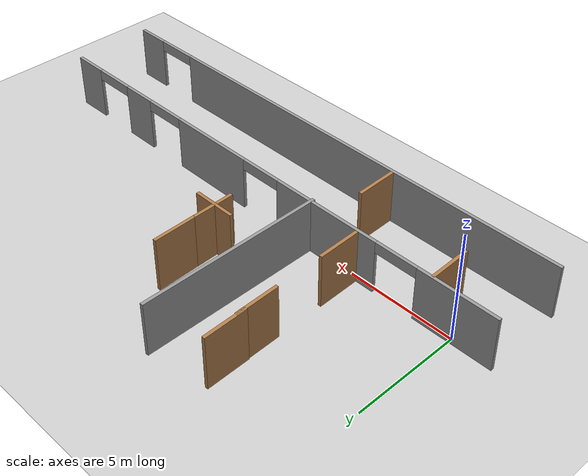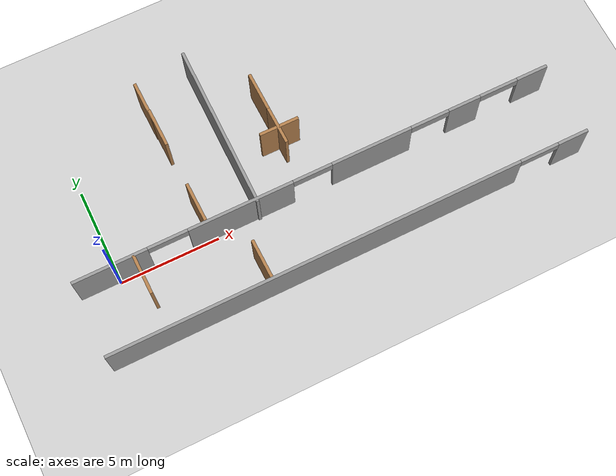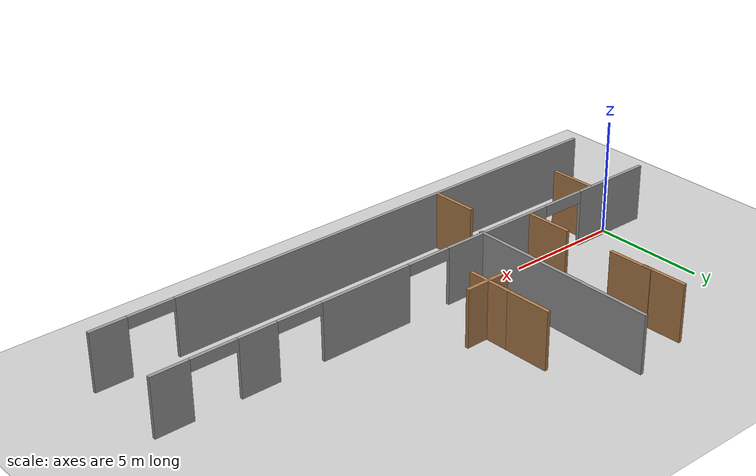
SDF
<sdf version="1.6">
 <world name="default">
  <model name="ground_plane">
   <static>1</static>
   <link name="link">
    <collision name="collision">
     <geometry><plane><normal>0 0 1</normal><size>100 100</size></plane></geometry>
     <surface><friction><ode><mu>100</mu><mu2>50</mu2></ode></friction></surface>
    </collision>
    <visual name="visual">
     <cast_shadows>0</cast_shadows>
     <geometry><plane><normal>0 0 1</normal><size>100 100</size></plane></geometry>
     <material>
      <script><uri>file://media/materials/scripts/gazebo.material</uri><name>Gazebo/Grey</name></script>
     </material>
    </visual>
   </link>
  </model>
  <model name="rbcp_final4">
   <link name="Wall_57">
    <pose>5.40302 0.050249 2.5 0 -0 0</pose>
    <visual name="Wall_57_Visual_0">
     <pose>-1.79121 0 1.25 0 -0 0</pose>
     <geometry><box><size>20.9176 0.15 2.5</size></box></geometry>
     <material>
      <script><uri>file://media/materials/scripts/gazebo.material</uri><name>Gazebo/Grey</name></script>
      <ambient>1 1 1 1</ambient>
      <diffuse>0.7 0.7 0.7 1</diffuse>
      <specular>0.01 0.01 0.01 1</specular>
      <emissive>0 0 0 1</emissive>
     </material>
    </visual>
    <visual name="Wall_57_Visual_1">
     <pose>11.4588 0 1.25 0 -0 0</pose>
     <geometry><box><size>1.58243 0.15 2.5</size></box></geometry>
     <material>
      <script><uri>file://media/materials/scripts/gazebo.material</uri><name>Gazebo/Grey</name></script>
      <ambient>1 1 1 1</ambient>
      <diffuse>0.7 0.7 0.7 1</diffuse>
      <specular>0.01 0.01 0.01 1</specular>
      <emissive>0 0 0 1</emissive>
     </material>
    </visual>
    <visual name="Wall_57_Visual_2">
     <pose>9.66757 0 2.25 0 -0 0</pose>
     <geometry><box><size>2 0.15 0.5</size></box></geometry>
     <material>
      <script><uri>file://media/materials/scripts/gazebo.material</uri><name>Gazebo/Grey</name></script>
      <ambient>1 1 1 1</ambient>
      <diffuse>0.7 0.7 0.7 1</diffuse>
      <specular>0.01 0.01 0.01 1</specular>
      <emissive>0 0 0 1</emissive>
     </material>
    </visual>
    <collision name="Wall_57_Collision_0">
     <pose>-1.79121 0 1.25 0 -0 0</pose>
     <geometry><box><size>20.9176 0.15 2.5</size></box></geometry>
     <surface>
      <friction>
       <ode><mu>1</mu><mu2>1</mu2><fdir1>0 0 0</fdir1><slip1>0</slip1><slip2>0</slip2></ode>
       <torsional>
        <coefficient>1</coefficient>
        <patch_radius>0</patch_radius>
        <surface_radius>0</surface_radius>
        <use_patch_radius>1</use_patch_radius>
        <ode><slip>0</slip></ode>
       </torsional>
      </friction>
      <bounce><restitution_coefficient>0</restitution_coefficient><threshold>1e+06</threshold></bounce>
      <contact>
       <collide_without_contact>0</collide_without_contact>
       <collide_without_contact_bitmask>1</collide_without_contact_bitmask>
       <collide_bitmask>1</collide_bitmask>
       <ode>
        <soft_cfm>0</soft_cfm>
        <soft_erp>0.2</soft_erp>
        <kp>1e+13</kp>
        <kd>1</kd>
        <max_vel>0.01</max_vel>
        <min_depth>0</min_depth>
       </ode>
       <bullet>
        <split_impulse>1</split_impulse>
        <split_impulse_penetration_threshold>-0.01</split_impulse_penetration_threshold>
        <soft_cfm>0</soft_cfm>
        <soft_erp>0.2</soft_erp>
        <kp>1e+13</kp>
        <kd>1</kd>
       </bullet>
      </contact>
     </surface>
    </collision>
    <collision name="Wall_57_Collision_1">
     <pose>11.4588 0 1.25 0 -0 0</pose>
     <geometry><box><size>1.58243 0.15 2.5</size></box></geometry>
     <surface>
      <friction>
       <ode><mu>1</mu><mu2>1</mu2><fdir1>0 0 0</fdir1><slip1>0</slip1><slip2>0</slip2></ode>
       <torsional>
        <coefficient>1</coefficient>
        <patch_radius>0</patch_radius>
        <surface_radius>0</surface_radius>
        <use_patch_radius>1</use_patch_radius>
        <ode><slip>0</slip></ode>
       </torsional>
      </friction>
      <bounce><restitution_coefficient>0</restitution_coefficient><threshold>1e+06</threshold></bounce>
      <contact>
       <collide_without_contact>0</collide_without_contact>
       <collide_without_contact_bitmask>1</collide_without_contact_bitmask>
       <collide_bitmask>1</collide_bitmask>
       <ode>
        <soft_cfm>0</soft_cfm>
        <soft_erp>0.2</soft_erp>
        <kp>1e+13</kp>
        <kd>1</kd>
        <max_vel>0.01</max_vel>
        <min_depth>0</min_depth>
       </ode>
       <bullet>
        <split_impulse>1</split_impulse>
        <split_impulse_penetration_threshold>-0.01</split_impulse_penetration_threshold>
        <soft_cfm>0</soft_cfm>
        <soft_erp>0.2</soft_erp>
        <kp>1e+13</kp>
        <kd>1</kd>
       </bullet>
      </contact>
     </surface>
    </collision>
    <collision name="Wall_57_Collision_2">
     <pose>9.66757 0 2.25 0 -0 0</pose>
     <geometry><box><size>2 0.15 0.5</size></box></geometry>
     <surface>
      <friction>
       <ode><mu>1</mu><mu2>1</mu2><fdir1>0 0 0</fdir1><slip1>0</slip1><slip2>0</slip2></ode>
       <torsional>
        <coefficient>1</coefficient>
        <patch_radius>0</patch_radius>
        <surface_radius>0</surface_radius>
        <use_patch_radius>1</use_patch_radius>
        <ode><slip>0</slip></ode>
       </torsional>
      </friction>
      <bounce><restitution_coefficient>0</restitution_coefficient><threshold>1e+06</threshold></bounce>
      <contact>
       <collide_without_contact>0</collide_without_contact>
       <collide_without_contact_bitmask>1</collide_without_contact_bitmask>
       <collide_bitmask>1</collide_bitmask>
       <ode>
        <soft_cfm>0</soft_cfm>
        <soft_erp>0.2</soft_erp>
        <kp>1e+13</kp>
        <kd>1</kd>
        <max_vel>0.01</max_vel>
        <min_depth>0</min_depth>
       </ode>
       <bullet>
        <split_impulse>1</split_impulse>
        <split_impulse_penetration_threshold>-0.01</split_impulse_penetration_threshold>
        <soft_cfm>0</soft_cfm>
        <soft_erp>0.2</soft_erp>
        <kp>1e+13</kp>
        <kd>1</kd>
       </bullet>
      </contact>
     </surface>
    </collision>
   </link>
   <link name="Wall_61">
    <pose>5.36104 3.82251 2.5 0 -0 0</pose>
    <visual name="Wall_61_Visual_0">
     <pose>-10.3954 0 1.25 0 -0 0</pose>
     <geometry><box><size>3.7092 0.15 2.5</size></box></geometry>
     <material>
      <script><uri>file://media/materials/scripts/gazebo.material</uri><name>Gazebo/Grey</name></script>
      <ambient>1 1 1 1</ambient>
      <diffuse>0.7 0.7 0.7 1</diffuse>
      <specular>0.01 0.01 0.01 1</specular>
      <emissive>0 0 0 1</emissive>
     </material>
    </visual>
    <visual name="Wall_61_Visual_1">
     <pose>-3.88236 0 1.25 0 -0 0</pose>
     <geometry><box><size>5.31687 0.15 2.5</size></box></geometry>
     <material>
      <script><uri>file://media/materials/scripts/gazebo.material</uri><name>Gazebo/Grey</name></script>
      <ambient>1 1 1 1</ambient>
      <diffuse>0.7 0.7 0.7 1</diffuse>
      <specular>0.01 0.01 0.01 1</specular>
      <emissive>0 0 0 1</emissive>
     </material>
    </visual>
    <visual name="Wall_61_Visual_2">
     <pose>2.85504 0 1.25 0 -0 0</pose>
     <geometry><box><size>4.15793 0.15 2.5</size></box></geometry>
     <material>
      <script><uri>file://media/materials/scripts/gazebo.material</uri><name>Gazebo/Grey</name></script>
      <ambient>1 1 1 1</ambient>
      <diffuse>0.7 0.7 0.7 1</diffuse>
      <specular>0.01 0.01 0.01 1</specular>
      <emissive>0 0 0 1</emissive>
     </material>
    </visual>
    <visual name="Wall_61_Visual_3">
     <pose>7.77928 0 1.25 0 -0 0</pose>
     <geometry><box><size>1.69055 0.15 2.5</size></box></geometry>
     <material>
      <script><uri>file://media/materials/scripts/gazebo.material</uri><name>Gazebo/Grey</name></script>
      <ambient>1 1 1 1</ambient>
      <diffuse>0.7 0.7 0.7 1</diffuse>
      <specular>0.01 0.01 0.01 1</specular>
      <emissive>0 0 0 1</emissive>
     </material>
    </visual>
    <visual name="Wall_61_Visual_4">
     <pose>11.4373 0 1.25 0 -0 0</pose>
     <geometry><box><size>1.62544 0.15 2.5</size></box></geometry>
     <material>
      <script><uri>file://media/materials/scripts/gazebo.material</uri><name>Gazebo/Grey</name></script>
      <ambient>1 1 1 1</ambient>
      <diffuse>0.7 0.7 0.7 1</diffuse>
      <specular>0.01 0.01 0.01 1</specular>
      <emissive>0 0 0 1</emissive>
     </material>
    </visual>
    <visual name="Wall_61_Visual_5">
     <pose>-7.5408 0 2.25 0 -0 0</pose>
     <geometry><box><size>2 0.15 0.5</size></box></geometry>
     <material>
      <script><uri>file://media/materials/scripts/gazebo.material</uri><name>Gazebo/Grey</name></script>
      <ambient>1 1 1 1</ambient>
      <diffuse>0.7 0.7 0.7 1</diffuse>
      <specular>0.01 0.01 0.01 1</specular>
      <emissive>0 0 0 1</emissive>
     </material>
    </visual>
    <visual name="Wall_61_Visual_6">
     <pose>-0.223926 0 2.25 0 -0 0</pose>
     <geometry><box><size>2 0.15 0.5</size></box></geometry>
     <material>
      <script><uri>file://media/materials/scripts/gazebo.material</uri><name>Gazebo/Grey</name></script>
      <ambient>1 1 1 1</ambient>
      <diffuse>0.7 0.7 0.7 1</diffuse>
      <specular>0.01 0.01 0.01 1</specular>
      <emissive>0 0 0 1</emissive>
     </material>
    </visual>
    <visual name="Wall_61_Visual_7">
     <pose>5.934 0 2.25 0 -0 0</pose>
     <geometry><box><size>2 0.15 0.5</size></box></geometry>
     <material>
      <script><uri>file://media/materials/scripts/gazebo.material</uri><name>Gazebo/Grey</name></script>
      <ambient>1 1 1 1</ambient>
      <diffuse>0.7 0.7 0.7 1</diffuse>
      <specular>0.01 0.01 0.01 1</specular>
      <emissive>0 0 0 1</emissive>
     </material>
    </visual>
    <visual name="Wall_61_Visual_8">
     <pose>9.62456 0 2.25 0 -0 0</pose>
     <geometry><box><size>2 0.15 0.5</size></box></geometry>
     <material>
      <script><uri>file://media/materials/scripts/gazebo.material</uri><name>Gazebo/Grey</name></script>
      <ambient>1 1 1 1</ambient>
      <diffuse>0.7 0.7 0.7 1</diffuse>
      <specular>0.01 0.01 0.01 1</specular>
      <emissive>0 0 0 1</emissive>
     </material>
    </visual>
    <collision name="Wall_61_Collision_3">
     <pose>7.77928 0 1.25 0 -0 0</pose>
     <geometry><box><size>1.69055 0.15 2.5</size></box></geometry>
     <surface>
      <friction>
       <ode><mu>1</mu><mu2>1</mu2><fdir1>0 0 0</fdir1><slip1>0</slip1><slip2>0</slip2></ode>
       <torsional>
        <coefficient>1</coefficient>
        <patch_radius>0</patch_radius>
        <surface_radius>0</surface_radius>
        <use_patch_radius>1</use_patch_radius>
        <ode><slip>0</slip></ode>
       </torsional>
      </friction>
      <bounce><restitution_coefficient>0</restitution_coefficient><threshold>1e+06</threshold></bounce>
      <contact>
       <collide_without_contact>0</collide_without_contact>
       <collide_without_contact_bitmask>1</collide_without_contact_bitmask>
       <collide_bitmask>1</collide_bitmask>
       <ode>
        <soft_cfm>0</soft_cfm>
        <soft_erp>0.2</soft_erp>
        <kp>1e+13</kp>
        <kd>1</kd>
        <max_vel>0.01</max_vel>
        <min_depth>0</min_depth>
       </ode>
       <bullet>
        <split_impulse>1</split_impulse>
        <split_impulse_penetration_threshold>-0.01</split_impulse_penetration_threshold>
        <soft_cfm>0</soft_cfm>
        <soft_erp>0.2</soft_erp>
        <kp>1e+13</kp>
        <kd>1</kd>
       </bullet>
      </contact>
     </surface>
    </collision>
    <collision name="Wall_61_Collision_4">
     <pose>11.4373 0 1.25 0 -0 0</pose>
     <geometry><box><size>1.62544 0.15 2.5</size></box></geometry>
     <surface>
      <friction>
       <ode><mu>1</mu><mu2>1</mu2><fdir1>0 0 0</fdir1><slip1>0</slip1><slip2>0</slip2></ode>
       <torsional>
        <coefficient>1</coefficient>
        <patch_radius>0</patch_radius>
        <surface_radius>0</surface_radius>
        <use_patch_radius>1</use_patch_radius>
        <ode><slip>0</slip></ode>
       </torsional>
      </friction>
      <bounce><restitution_coefficient>0</restitution_coefficient><threshold>1e+06</threshold></bounce>
      <contact>
       <collide_without_contact>0</collide_without_contact>
       <collide_without_contact_bitmask>1</collide_without_contact_bitmask>
       <collide_bitmask>1</collide_bitmask>
       <ode>
        <soft_cfm>0</soft_cfm>
        <soft_erp>0.2</soft_erp>
        <kp>1e+13</kp>
        <kd>1</kd>
        <max_vel>0.01</max_vel>
        <min_depth>0</min_depth>
       </ode>
       <bullet>
        <split_impulse>1</split_impulse>
        <split_impulse_penetration_threshold>-0.01</split_impulse_penetration_threshold>
        <soft_cfm>0</soft_cfm>
        <soft_erp>0.2</soft_erp>
        <kp>1e+13</kp>
        <kd>1</kd>
       </bullet>
      </contact>
     </surface>
    </collision>
    <collision name="Wall_61_Collision_1">
     <pose>-3.88236 0 1.25 0 -0 0</pose>
     <geometry><box><size>5.31687 0.15 2.5</size></box></geometry>
     <surface>
      <friction>
       <ode><mu>1</mu><mu2>1</mu2><fdir1>0 0 0</fdir1><slip1>0</slip1><slip2>0</slip2></ode>
       <torsional>
        <coefficient>1</coefficient>
        <patch_radius>0</patch_radius>
        <surface_radius>0</surface_radius>
        <use_patch_radius>1</use_patch_radius>
        <ode><slip>0</slip></ode>
       </torsional>
      </friction>
      <bounce><restitution_coefficient>0</restitution_coefficient><threshold>1e+06</threshold></bounce>
      <contact>
       <collide_without_contact>0</collide_without_contact>
       <collide_without_contact_bitmask>1</collide_without_contact_bitmask>
       <collide_bitmask>1</collide_bitmask>
       <ode>
        <soft_cfm>0</soft_cfm>
        <soft_erp>0.2</soft_erp>
        <kp>1e+13</kp>
        <kd>1</kd>
        <max_vel>0.01</max_vel>
        <min_depth>0</min_depth>
       </ode>
       <bullet>
        <split_impulse>1</split_impulse>
        <split_impulse_penetration_threshold>-0.01</split_impulse_penetration_threshold>
        <soft_cfm>0</soft_cfm>
        <soft_erp>0.2</soft_erp>
        <kp>1e+13</kp>
        <kd>1</kd>
       </bullet>
      </contact>
     </surface>
    </collision>
    <collision name="Wall_61_Collision_0">
     <pose>-10.3954 0 1.25 0 -0 0</pose>
     <geometry><box><size>3.7092 0.15 2.5</size></box></geometry>
     <surface>
      <friction>
       <ode><mu>1</mu><mu2>1</mu2><fdir1>0 0 0</fdir1><slip1>0</slip1><slip2>0</slip2></ode>
       <torsional>
        <coefficient>1</coefficient>
        <patch_radius>0</patch_radius>
        <surface_radius>0</surface_radius>
        <use_patch_radius>1</use_patch_radius>
        <ode><slip>0</slip></ode>
       </torsional>
      </friction>
      <bounce><restitution_coefficient>0</restitution_coefficient><threshold>1e+06</threshold></bounce>
      <contact>
       <collide_without_contact>0</collide_without_contact>
       <collide_without_contact_bitmask>1</collide_without_contact_bitmask>
       <collide_bitmask>1</collide_bitmask>
       <ode>
        <soft_cfm>0</soft_cfm>
        <soft_erp>0.2</soft_erp>
        <kp>1e+13</kp>
        <kd>1</kd>
        <max_vel>0.01</max_vel>
        <min_depth>0</min_depth>
       </ode>
       <bullet>
        <split_impulse>1</split_impulse>
        <split_impulse_penetration_threshold>-0.01</split_impulse_penetration_threshold>
        <soft_cfm>0</soft_cfm>
        <soft_erp>0.2</soft_erp>
        <kp>1e+13</kp>
        <kd>1</kd>
       </bullet>
      </contact>
     </surface>
    </collision>
    <collision name="Wall_61_Collision_2">
     <pose>2.85504 0 1.25 0 -0 0</pose>
     <geometry><box><size>4.15793 0.15 2.5</size></box></geometry>
     <surface>
      <friction>
       <ode><mu>1</mu><mu2>1</mu2><fdir1>0 0 0</fdir1><slip1>0</slip1><slip2>0</slip2></ode>
       <torsional>
        <coefficient>1</coefficient>
        <patch_radius>0</patch_radius>
        <surface_radius>0</surface_radius>
        <use_patch_radius>1</use_patch_radius>
        <ode><slip>0</slip></ode>
       </torsional>
      </friction>
      <bounce><restitution_coefficient>0</restitution_coefficient><threshold>1e+06</threshold></bounce>
      <contact>
       <collide_without_contact>0</collide_without_contact>
       <collide_without_contact_bitmask>1</collide_without_contact_bitmask>
       <collide_bitmask>1</collide_bitmask>
       <ode>
        <soft_cfm>0</soft_cfm>
        <soft_erp>0.2</soft_erp>
        <kp>1e+13</kp>
        <kd>1</kd>
        <max_vel>0.01</max_vel>
        <min_depth>0</min_depth>
       </ode>
       <bullet>
        <split_impulse>1</split_impulse>
        <split_impulse_penetration_threshold>-0.01</split_impulse_penetration_threshold>
        <soft_cfm>0</soft_cfm>
        <soft_erp>0.2</soft_erp>
        <kp>1e+13</kp>
        <kd>1</kd>
       </bullet>
      </contact>
     </surface>
    </collision>
    <collision name="Wall_61_Collision_5">
     <pose>-7.5408 0 2.25 0 -0 0</pose>
     <geometry><box><size>2 0.15 0.5</size></box></geometry>
     <surface>
      <friction>
       <ode><mu>1</mu><mu2>1</mu2><fdir1>0 0 0</fdir1><slip1>0</slip1><slip2>0</slip2></ode>
       <torsional>
        <coefficient>1</coefficient>
        <patch_radius>0</patch_radius>
        <surface_radius>0</surface_radius>
        <use_patch_radius>1</use_patch_radius>
        <ode><slip>0</slip></ode>
       </torsional>
      </friction>
      <bounce><restitution_coefficient>0</restitution_coefficient><threshold>1e+06</threshold></bounce>
      <contact>
       <collide_without_contact>0</collide_without_contact>
       <collide_without_contact_bitmask>1</collide_without_contact_bitmask>
       <collide_bitmask>1</collide_bitmask>
       <ode>
        <soft_cfm>0</soft_cfm>
        <soft_erp>0.2</soft_erp>
        <kp>1e+13</kp>
        <kd>1</kd>
        <max_vel>0.01</max_vel>
        <min_depth>0</min_depth>
       </ode>
       <bullet>
        <split_impulse>1</split_impulse>
        <split_impulse_penetration_threshold>-0.01</split_impulse_penetration_threshold>
        <soft_cfm>0</soft_cfm>
        <soft_erp>0.2</soft_erp>
        <kp>1e+13</kp>
        <kd>1</kd>
       </bullet>
      </contact>
     </surface>
    </collision>
    <collision name="Wall_61_Collision_7">
     <pose>5.934 0 2.25 0 -0 0</pose>
     <geometry><box><size>2 0.15 0.5</size></box></geometry>
     <surface>
      <friction>
       <ode><mu>1</mu><mu2>1</mu2><fdir1>0 0 0</fdir1><slip1>0</slip1><slip2>0</slip2></ode>
       <torsional>
        <coefficient>1</coefficient>
        <patch_radius>0</patch_radius>
        <surface_radius>0</surface_radius>
        <use_patch_radius>1</use_patch_radius>
        <ode><slip>0</slip></ode>
       </torsional>
      </friction>
      <bounce><restitution_coefficient>0</restitution_coefficient><threshold>1e+06</threshold></bounce>
      <contact>
       <collide_without_contact>0</collide_without_contact>
       <collide_without_contact_bitmask>1</collide_without_contact_bitmask>
       <collide_bitmask>1</collide_bitmask>
       <ode>
        <soft_cfm>0</soft_cfm>
        <soft_erp>0.2</soft_erp>
        <kp>1e+13</kp>
        <kd>1</kd>
        <max_vel>0.01</max_vel>
        <min_depth>0</min_depth>
       </ode>
       <bullet>
        <split_impulse>1</split_impulse>
        <split_impulse_penetration_threshold>-0.01</split_impulse_penetration_threshold>
        <soft_cfm>0</soft_cfm>
        <soft_erp>0.2</soft_erp>
        <kp>1e+13</kp>
        <kd>1</kd>
       </bullet>
      </contact>
     </surface>
    </collision>
    <collision name="Wall_61_Collision_8">
     <pose>9.62456 0 2.25 0 -0 0</pose>
     <geometry><box><size>2 0.15 0.5</size></box></geometry>
     <surface>
      <friction>
       <ode><mu>1</mu><mu2>1</mu2><fdir1>0 0 0</fdir1><slip1>0</slip1><slip2>0</slip2></ode>
       <torsional>
        <coefficient>1</coefficient>
        <patch_radius>0</patch_radius>
        <surface_radius>0</surface_radius>
        <use_patch_radius>1</use_patch_radius>
        <ode><slip>0</slip></ode>
       </torsional>
      </friction>
      <bounce><restitution_coefficient>0</restitution_coefficient><threshold>1e+06</threshold></bounce>
      <contact>
       <collide_without_contact>0</collide_without_contact>
       <collide_without_contact_bitmask>1</collide_without_contact_bitmask>
       <collide_bitmask>1</collide_bitmask>
       <ode>
        <soft_cfm>0</soft_cfm>
        <soft_erp>0.2</soft_erp>
        <kp>1e+13</kp>
        <kd>1</kd>
        <max_vel>0.01</max_vel>
        <min_depth>0</min_depth>
       </ode>
       <bullet>
        <split_impulse>1</split_impulse>
        <split_impulse_penetration_threshold>-0.01</split_impulse_penetration_threshold>
        <soft_cfm>0</soft_cfm>
        <soft_erp>0.2</soft_erp>
        <kp>1e+13</kp>
        <kd>1</kd>
       </bullet>
      </contact>
     </surface>
    </collision>
    <collision name="Wall_61_Collision_6">
     <pose>-0.223926 0 2.25 0 -0 0</pose>
     <geometry><box><size>2 0.15 0.5</size></box></geometry>
     <surface>
      <friction>
       <ode><mu>1</mu><mu2>1</mu2><fdir1>0 0 0</fdir1><slip1>0</slip1><slip2>0</slip2></ode>
       <torsional>
        <coefficient>1</coefficient>
        <patch_radius>0</patch_radius>
        <surface_radius>0</surface_radius>
        <use_patch_radius>1</use_patch_radius>
        <ode><slip>0</slip></ode>
       </torsional>
      </friction>
      <bounce><restitution_coefficient>0</restitution_coefficient><threshold>1e+06</threshold></bounce>
      <contact>
       <collide_without_contact>0</collide_without_contact>
       <collide_without_contact_bitmask>1</collide_without_contact_bitmask>
       <collide_bitmask>1</collide_bitmask>
       <ode>
        <soft_cfm>0</soft_cfm>
        <soft_erp>0.2</soft_erp>
        <kp>1e+13</kp>
        <kd>1</kd>
        <max_vel>0.01</max_vel>
        <min_depth>0</min_depth>
       </ode>
       <bullet>
        <split_impulse>1</split_impulse>
        <split_impulse_penetration_threshold>-0.01</split_impulse_penetration_threshold>
        <soft_cfm>0</soft_cfm>
        <soft_erp>0.2</soft_erp>
        <kp>1e+13</kp>
        <kd>1</kd>
       </bullet>
      </contact>
     </surface>
    </collision>
   </link>
   <link name="Wall_65">
    <pose>2.26718 7.92037 2.5 0 -0 1.5708</pose>
    <visual name="Wall_65_Visual">
     <pose>0 0 1.25 0 -0 0</pose>
     <geometry><box><size>8.5 0.15 2.5</size></box></geometry>
     <material>
      <script><uri>file://media/materials/scripts/gazebo.material</uri><name>Gazebo/Grey</name></script>
      <ambient>1 1 1 1</ambient>
      <diffuse>0.7 0.7 0.7 1</diffuse>
      <specular>0.01 0.01 0.01 1</specular>
      <emissive>0 0 0 1</emissive>
     </material>
    </visual>
    <collision name="Wall_65_Collision">
     <pose>0 0 1.25 0 -0 0</pose>
     <geometry><box><size>8.5 0.15 2.5</size></box></geometry>
     <surface>
      <friction>
       <ode><mu>1</mu><mu2>1</mu2><fdir1>0 0 0</fdir1><slip1>0</slip1><slip2>0</slip2></ode>
       <torsional>
        <coefficient>1</coefficient>
        <patch_radius>0</patch_radius>
        <surface_radius>0</surface_radius>
        <use_patch_radius>1</use_patch_radius>
        <ode><slip>0</slip></ode>
       </torsional>
      </friction>
      <bounce><restitution_coefficient>0</restitution_coefficient><threshold>1e+06</threshold></bounce>
      <contact>
       <collide_without_contact>0</collide_without_contact>
       <collide_without_contact_bitmask>1</collide_without_contact_bitmask>
       <collide_bitmask>1</collide_bitmask>
       <ode>
        <soft_cfm>0</soft_cfm>
        <soft_erp>0.2</soft_erp>
        <kp>1e+13</kp>
        <kd>1</kd>
        <max_vel>0.01</max_vel>
        <min_depth>0</min_depth>
       </ode>
       <bullet>
        <split_impulse>1</split_impulse>
        <split_impulse_penetration_threshold>-0.01</split_impulse_penetration_threshold>
        <soft_cfm>0</soft_cfm>
        <soft_erp>0.2</soft_erp>
        <kp>1e+13</kp>
        <kd>1</kd>
       </bullet>
      </contact>
     </surface>
    </collision>
   </link>
   <static>1</static>
   <pose>4.93057 -3.68418 -2.5 0 -0 0</pose>
  </model>
  <model name="tr_maze_lay_1_clone_9_clone_10">
   <pose>6.20277 -2.60196 0 0 0 -1.549</pose>
   <link name="Wall_21">
    <collision name="Wall_21_Collision">
     <geometry><box><size>2 0.15 2.5</size></box></geometry>
     <pose>0 0 1.25 0 -0 0</pose>
    </collision>
    <visual name="Wall_21_Visual">
     <pose>0 0 1.25 0 -0 0</pose>
     <geometry><box><size>2 0.15 2.5</size></box></geometry>
     <material>
      <script><uri>file://media/materials/scripts/gazebo.material</uri><name>Gazebo/Wood</name></script>
      <ambient>1 1 1 1</ambient>
     </material>
    </visual>
    <pose>0 0 0 0 -0 3.14159</pose>
   </link>
   <static>1</static>
  </model>
  <model name="tr_maze_lay_1_clone_9_clone_14">
   <pose>1.07512 -0.876111 0 0 0 -1.549</pose>
   <link name="Wall_21">
    <collision name="Wall_21_Collision">
     <geometry><box><size>2 0.15 2.5</size></box></geometry>
     <pose>0 0 1.25 0 -0 0</pose>
    </collision>
    <visual name="Wall_21_Visual">
     <pose>0 0 1.25 0 -0 0</pose>
     <geometry><box><size>2 0.15 2.5</size></box></geometry>
     <material>
      <script><uri>file://media/materials/scripts/gazebo.material</uri><name>Gazebo/Wood</name></script>
      <ambient>1 1 1 1</ambient>
     </material>
    </visual>
    <pose>0 0 0 0 -0 3.14159</pose>
   </link>
   <static>1</static>
  </model>
  <model name="tr_maze_lay_1_clone_9_clone_15">
   <pose>4.65034 1.21835 0 0 0 -1.549</pose>
   <link name="Wall_21">
    <collision name="Wall_21_Collision">
     <geometry><box><size>2 0.15 2.5</size></box></geometry>
     <pose>0 0 1.25 0 -0 0</pose>
    </collision>
    <visual name="Wall_21_Visual">
     <pose>0 0 1.25 0 -0 0</pose>
     <geometry><box><size>2 0.15 2.5</size></box></geometry>
     <material>
      <script><uri>file://media/materials/scripts/gazebo.material</uri><name>Gazebo/Wood</name></script>
      <ambient>1 1 1 1</ambient>
     </material>
    </visual>
    <pose>0 0 0 0 -0 3.14159</pose>
   </link>
   <static>1</static>
  </model>
  <model name="tr_maze_lay_1_clone_9_clone_16">
   <pose>4.503 6.98705 0 0 0 -1.549</pose>
   <link name="Wall_21">
    <collision name="Wall_21_Collision">
     <geometry><box><size>2 0.15 2.5</size></box></geometry>
     <pose>0 0 1.25 0 -0 0</pose>
    </collision>
    <visual name="Wall_21_Visual">
     <pose>0 0 1.25 0 -0 0</pose>
     <geometry><box><size>2 0.15 2.5</size></box></geometry>
     <material>
      <script><uri>file://media/materials/scripts/gazebo.material</uri><name>Gazebo/Wood</name></script>
      <ambient>1 1 1 1</ambient>
     </material>
    </visual>
    <pose>0 0 0 0 -0 3.14159</pose>
   </link>
   <static>1</static>
  </model>
  <model name="tr_maze_lay_1_clone_9_clone_17">
   <pose>4.56964 5.43797 0 0 0 -1.549</pose>
   <link name="Wall_21">
    <collision name="Wall_21_Collision">
     <geometry><box><size>2 0.15 2.5</size></box></geometry>
     <pose>0 0 1.25 0 -0 0</pose>
    </collision>
    <visual name="Wall_21_Visual">
     <pose>0 0 1.25 0 -0 0</pose>
     <geometry><box><size>2 0.15 2.5</size></box></geometry>
     <material>
      <script><uri>file://media/materials/scripts/gazebo.material</uri><name>Gazebo/Wood</name></script>
      <ambient>1 1 1 1</ambient>
     </material>
    </visual>
    <pose>0 0 0 0 -0 3.14159</pose>
   </link>
   <static>1</static>
  </model>
  <model name="tr_maze_lay_1_clone_5_clone_6">
   <pose>9.61384 5.01832 0 0 0 -1.549</pose>
   <link name="Wall_21">
    <collision name="Wall_21_Collision">
     <geometry><box><size>2 0.15 2.5</size></box></geometry>
     <pose>0 0 1.25 0 -0 0</pose>
    </collision>
    <visual name="Wall_21_Visual">
     <pose>0 0 1.25 0 -0 0</pose>
     <geometry><box><size>2 0.15 2.5</size></box></geometry>
     <material>
      <script><uri>file://media/materials/scripts/gazebo.material</uri><name>Gazebo/Wood</name></script>
      <ambient>1 1 1 1</ambient>
     </material>
    </visual>
    <pose>0 0 0 0 -0 3.14159</pose>
   </link>
   <static>1</static>
  </model>
  <model name="tr_maze_lay_1_clone_5_clone_7">
   <pose>9.65615 3.07588 0 0 0 -1.549</pose>
   <link name="Wall_21">
    <collision name="Wall_21_Collision">
     <geometry><box><size>2 0.15 2.5</size></box></geometry>
     <pose>0 0 1.25 0 -0 0</pose>
    </collision>
    <visual name="Wall_21_Visual">
     <pose>0 0 1.25 0 -0 0</pose>
     <geometry><box><size>2 0.15 2.5</size></box></geometry>
     <material>
      <script><uri>file://media/materials/scripts/gazebo.material</uri><name>Gazebo/Wood</name></script>
      <ambient>1 1 1 1</ambient>
     </material>
    </visual>
    <pose>0 0 0 0 -0 3.14159</pose>
   </link>
   <static>1</static>
  </model>
  <model name="tr_maze_lay_1_clone_7_clone_1">
   <pose>9.69691 2.96475 0 0 -0 0</pose>
   <link name="Wall_21">
    <collision name="Wall_21_Collision">
     <geometry><box><size>2 0.15 2.5</size></box></geometry>
     <pose>0 0 1.25 0 -0 0</pose>
    </collision>
    <visual name="Wall_21_Visual">
     <pose>0 0 1.25 0 -0 0</pose>
     <geometry><box><size>2 0.15 2.5</size></box></geometry>
     <material>
      <script><uri>file://media/materials/scripts/gazebo.material</uri><name>Gazebo/Wood</name></script>
      <ambient>1 1 1 1</ambient>
     </material>
    </visual>
    <pose>0 0 0 0 -0 3.14159</pose>
   </link>
   <static>1</static>
  </model>
 </world>
</sdf>
